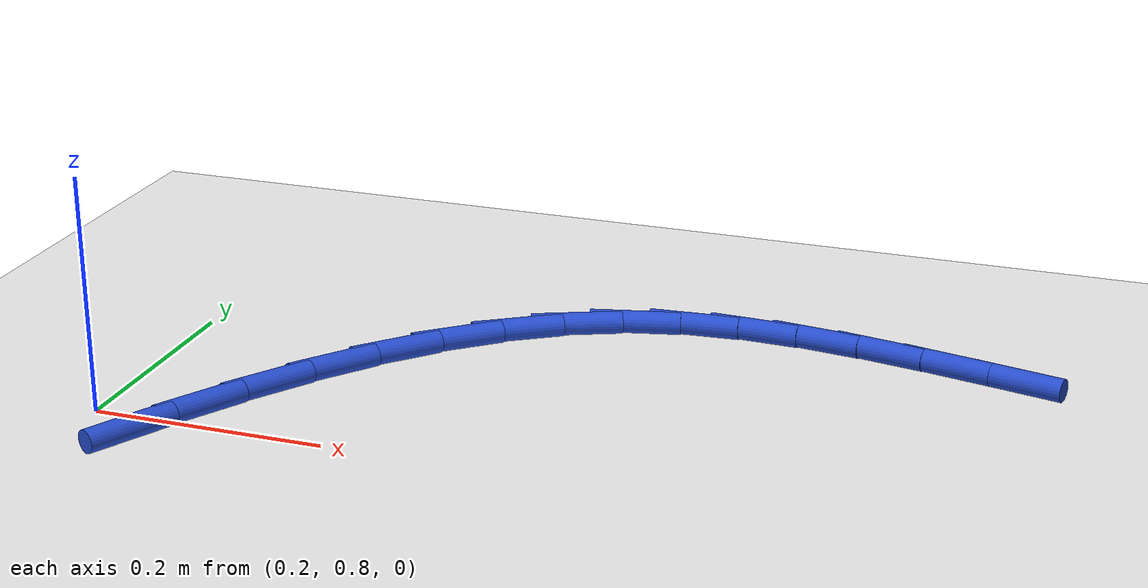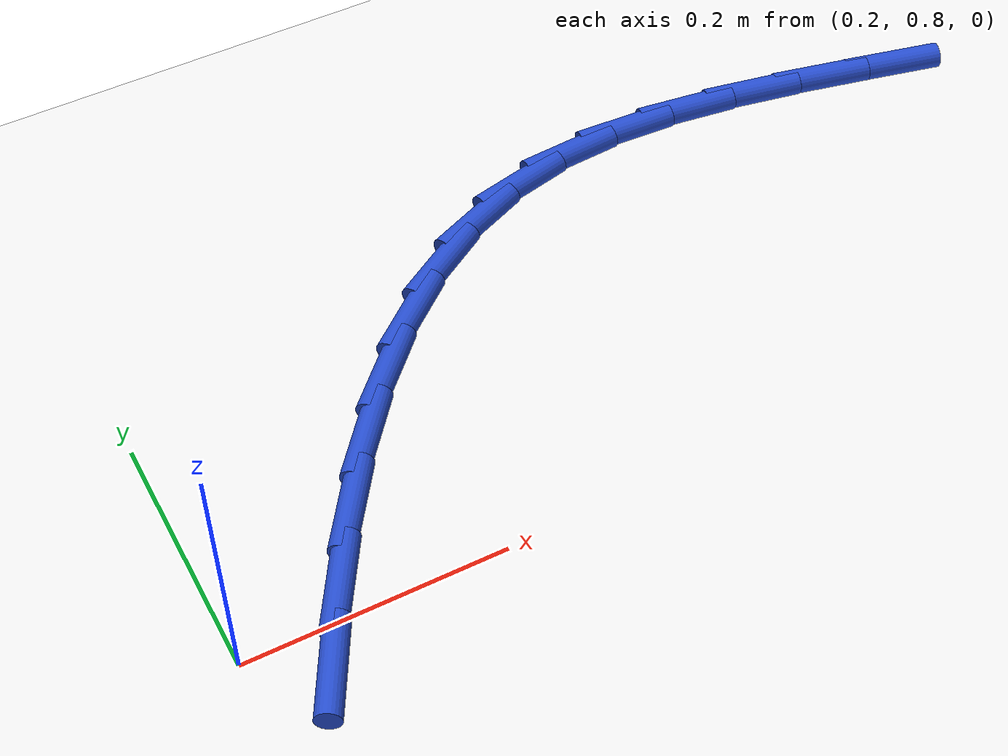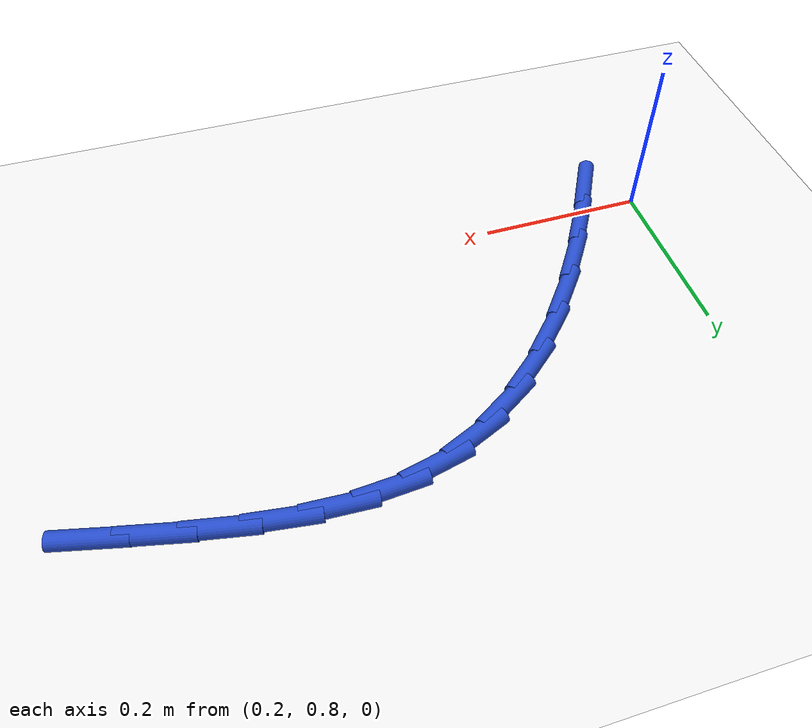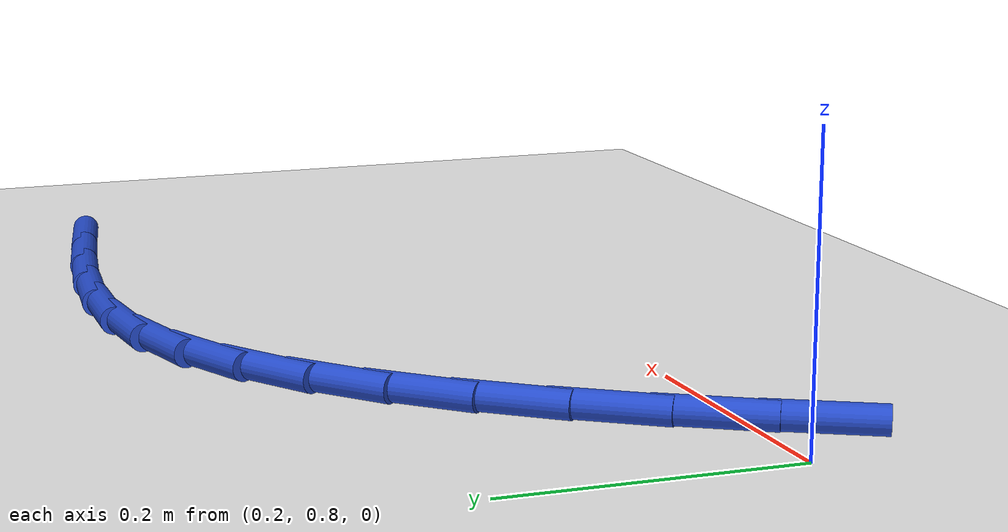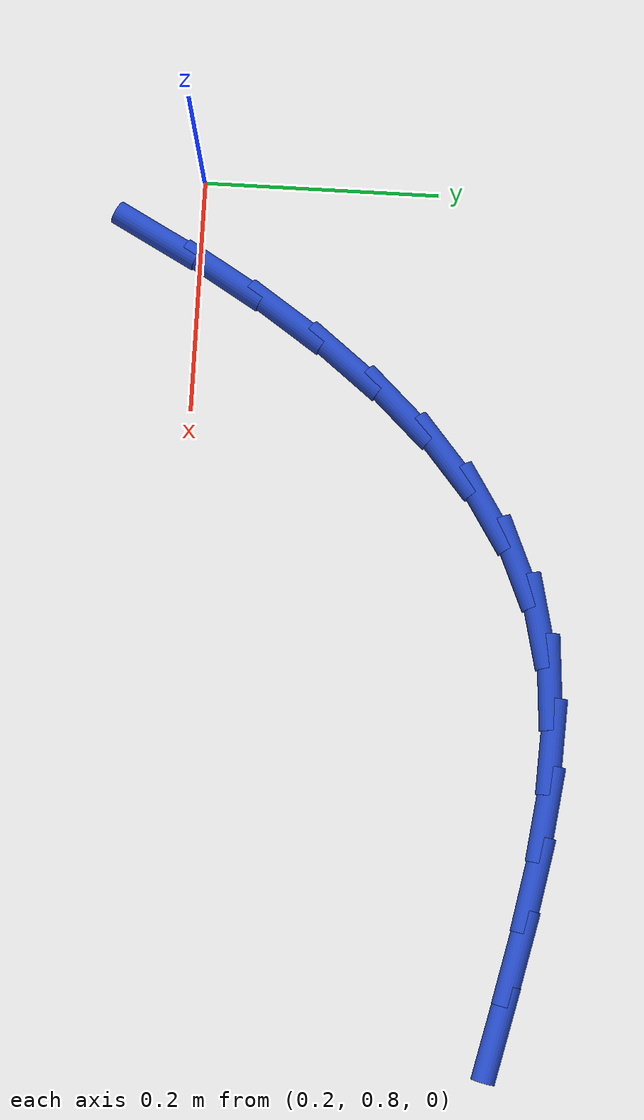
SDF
<sdf version="1.6">
 <world name="default">
  <model name="ground_plane">
   <static>1</static>
   <link name="link">
    <collision name="collision">
     <geometry><plane><normal>0 0 1</normal><size>100 100</size></plane></geometry>
     <surface><friction><ode><mu>100</mu><mu2>50</mu2></ode></friction></surface>
    </collision>
    <visual name="visual">
     <cast_shadows>0</cast_shadows>
     <geometry><plane><normal>0 0 1</normal><size>100 100</size></plane></geometry>
     <material>
      <script><uri>file://media/materials/scripts/gazebo.material</uri><name>Gazebo/WhiteGlow</name></script>
     </material>
    </visual>
   </link>
  </model>
  <model name="line">
   <link name="link_13">
    <pose>0.2519578785311568 0.763314653022597 0.01 0 1.57 1.074569068771476</pose>
    <collision name="collision">
     <geometry><cylinder><radius>0.01</radius><length>0.08</length></cylinder></geometry>
    </collision>
    <visual name="visual">
     <material>
      <script><name>Gazebo/Blue</name><uri>file://media/materials/scripts/gazebo.material</uri></script>
     </material>
     <geometry><cylinder><radius>0.01</radius><length>0.08</length></cylinder></geometry>
    </visual>
   </link>
   <link name="link_14">
    <pose>0.2833919977027412 0.8213739727104006 0.01 0 1.57 1.0279366813372466</pose>
    <collision name="collision">
     <geometry><cylinder><radius>0.01</radius><length>0.08</length></cylinder></geometry>
    </collision>
    <visual name="visual">
     <material>
      <script><name>Gazebo/Blue</name><uri>file://media/materials/scripts/gazebo.material</uri></script>
     </material>
     <geometry><cylinder><radius>0.01</radius><length>0.08</length></cylinder></geometry>
    </visual>
   </link>
   <link name="link_15">
    <pose>0.31668031187089835 0.8765488761061935 0.01 0 1.57 0.9695765565141241</pose>
    <collision name="collision">
     <geometry><cylinder><radius>0.01</radius><length>0.08</length></cylinder></geometry>
    </collision>
    <visual name="visual">
     <material>
      <script><name>Gazebo/Blue</name><uri>file://media/materials/scripts/gazebo.material</uri></script>
     </material>
     <geometry><cylinder><radius>0.01</radius><length>0.08</length></cylinder></geometry>
    </visual>
   </link>
   <link name="link_16">
    <pose>0.35197357204137736 0.9280021040475982 0.01 0 1.57 0.8969203744545392</pose>
    <collision name="collision">
     <geometry><cylinder><radius>0.01</radius><length>0.08</length></cylinder></geometry>
    </collision>
    <visual name="visual">
     <material>
      <script><name>Gazebo/Blue</name><uri>file://media/materials/scripts/gazebo.material</uri></script>
     </material>
     <geometry><cylinder><radius>0.01</radius><length>0.08</length></cylinder></geometry>
    </visual>
   </link>
   <link name="link_17">
    <pose>0.38942252921992726 0.9748963973722375 0.01 0 1.57 0.8068424964030008</pose>
    <collision name="collision">
     <geometry><cylinder><radius>0.01</radius><length>0.08</length></cylinder></geometry>
    </collision>
    <visual name="visual">
     <material>
      <script><name>Gazebo/Blue</name><uri>file://media/materials/scripts/gazebo.material</uri></script>
     </material>
     <geometry><cylinder><radius>0.01</radius><length>0.08</length></cylinder></geometry>
    </visual>
   </link>
   <link name="link_18">
    <pose>0.4291779344122972 1.0163944969177348 0.01 0 1.57 0.6959600166480446</pose>
    <collision name="collision">
     <geometry><cylinder><radius>0.01</radius><length>0.08</length></cylinder></geometry>
    </collision>
    <visual name="visual">
     <material>
      <script><name>Gazebo/Blue</name><uri>file://media/materials/scripts/gazebo.material</uri></script>
     </material>
     <geometry><cylinder><radius>0.01</radius><length>0.08</length></cylinder></geometry>
    </visual>
   </link>
   <link name="link_19">
    <pose>0.4713905386242362 1.051659143521712 0.01 0 1.57 0.5614994191288849</pose>
    <collision name="collision">
     <geometry><cylinder><radius>0.01</radius><length>0.08</length></cylinder></geometry>
    </collision>
    <visual name="visual">
     <material>
      <script><name>Gazebo/Blue</name><uri>file://media/materials/scripts/gazebo.material</uri></script>
     </material>
     <geometry><cylinder><radius>0.01</radius><length>0.08</length></cylinder></geometry>
    </visual>
   </link>
   <link name="link_20">
    <pose>0.5162110928614936 1.0798530780217928 0.01 0 1.57 0.4030232952322803</pose>
    <collision name="collision">
     <geometry><cylinder><radius>0.01</radius><length>0.08</length></cylinder></geometry>
    </collision>
    <visual name="visual">
     <material>
      <script><name>Gazebo/Blue</name><uri>file://media/materials/scripts/gazebo.material</uri></script>
     </material>
     <geometry><cylinder><radius>0.01</radius><length>0.08</length></cylinder></geometry>
    </visual>
   </link>
   <link name="link_21">
    <pose>0.5637903481298181 1.1001390412555998 0.01 0 1.57 0.2279912245385788</pose>
    <collision name="collision">
     <geometry><cylinder><radius>0.01</radius><length>0.08</length></cylinder></geometry>
    </collision>
    <visual name="visual">
     <material>
      <script><name>Gazebo/Blue</name><uri>file://media/materials/scripts/gazebo.material</uri></script>
     </material>
     <geometry><cylinder><radius>0.01</radius><length>0.08</length></cylinder></geometry>
    </visual>
   </link>
   <link name="link_22">
    <pose>0.6142461202724587 1.111846064636172 0.01 0 1.57 0.07210098425246207</pose>
    <collision name="collision">
     <geometry><cylinder><radius>0.01</radius><length>0.08</length></cylinder></geometry>
    </collision>
    <visual name="visual">
     <material>
      <script><name>Gazebo/Blue</name><uri>file://media/materials/scripts/gazebo.material</uri></script>
     </material>
     <geometry><cylinder><radius>0.01</radius><length>0.08</length></cylinder></geometry>
    </visual>
   </link>
   <link name="link_23">
    <pose>0.6674221941991247 1.115686769580695 0.01 0 1.57 -0.0472048213889643</pose>
    <collision name="collision">
     <geometry><cylinder><radius>0.01</radius><length>0.08</length></cylinder></geometry>
    </collision>
    <visual name="visual">
     <material>
      <script><name>Gazebo/Blue</name><uri>file://media/materials/scripts/gazebo.material</uri></script>
     </material>
     <geometry><cylinder><radius>0.01</radius><length>0.08</length></cylinder></geometry>
    </visual>
   </link>
   <link name="link_24">
    <pose>0.7230264371130988 1.113060029885124 0.01 0 1.57 -0.13241201339870295</pose>
    <collision name="collision">
     <geometry><cylinder><radius>0.01</radius><length>0.08</length></cylinder></geometry>
    </collision>
    <visual name="visual">
     <material>
      <script><name>Gazebo/Blue</name><uri>file://media/materials/scripts/gazebo.material</uri></script>
     </material>
     <geometry><cylinder><radius>0.01</radius><length>0.08</length></cylinder></geometry>
    </visual>
   </link>
   <link name="link_25">
    <pose>0.7807657386462272 1.1053696551314944 0.01 0 1.57 -0.18824403000593132</pose>
    <collision name="collision">
     <geometry><cylinder><radius>0.01</radius><length>0.08</length></cylinder></geometry>
    </collision>
    <visual name="visual">
     <material>
      <script><name>Gazebo/Blue</name><uri>file://media/materials/scripts/gazebo.material</uri></script>
     </material>
     <geometry><cylinder><radius>0.01</radius><length>0.08</length></cylinder></geometry>
    </visual>
   </link>
   <link name="link_26">
    <pose>0.8403469884303567 1.094019454901839 0.01 0 1.57 -0.21900800971256837</pose>
    <collision name="collision">
     <geometry><cylinder><radius>0.01</radius><length>0.08</length></cylinder></geometry>
    </collision>
    <visual name="visual">
     <material>
      <script><name>Gazebo/Blue</name><uri>file://media/materials/scripts/gazebo.material</uri></script>
     </material>
     <geometry><cylinder><radius>0.01</radius><length>0.08</length></cylinder></geometry>
    </visual>
   </link>
   <link name="link_27">
    <pose>0.9014770760973343 1.080413238778193 0.01 0 1.57 -0.2277375822040252</pose>
    <collision name="collision">
     <geometry><cylinder><radius>0.01</radius><length>0.08</length></cylinder></geometry>
    </collision>
    <visual name="visual">
     <material>
      <script><name>Gazebo/Blue</name><uri>file://media/materials/scripts/gazebo.material</uri></script>
     </material>
     <geometry><cylinder><radius>0.01</radius><length>0.08</length></cylinder></geometry>
    </visual>
   </link>
  </model>
 </world>
</sdf>
